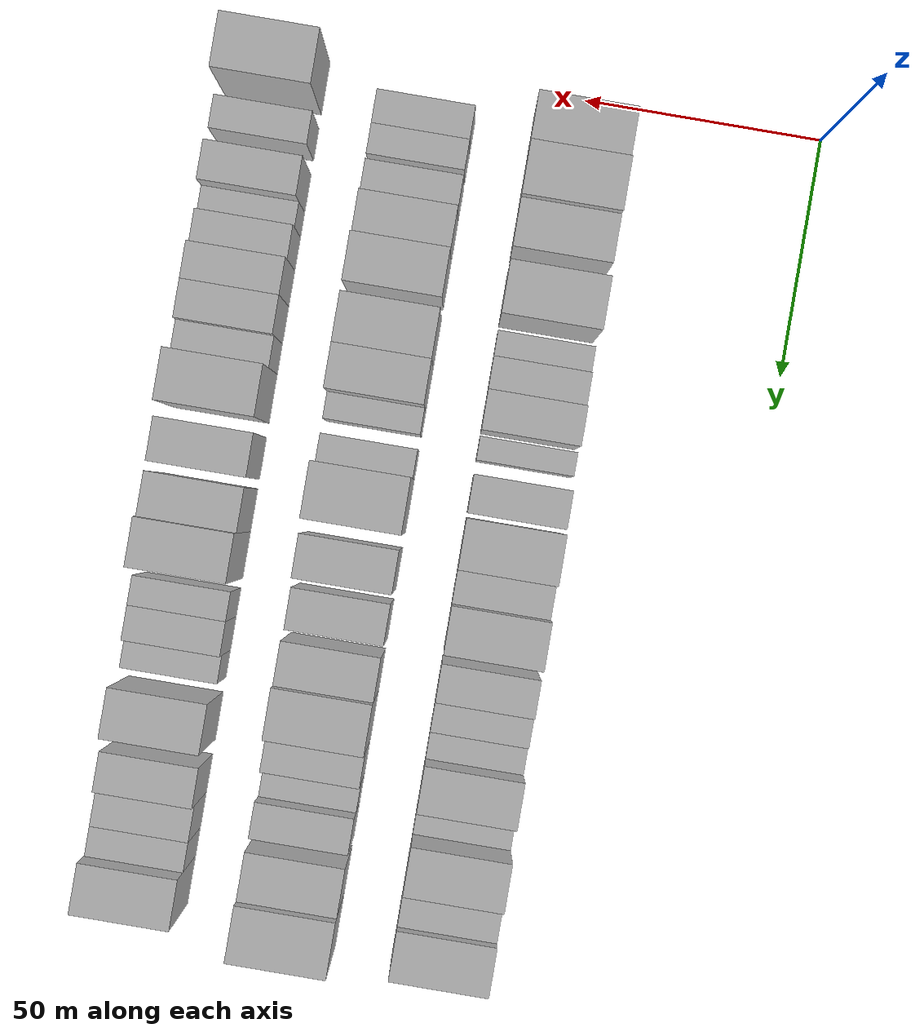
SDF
<sdf version="1.6">
 <world name="default">
  <model name="building_38">
   <static>1</static>
   <pose>50.0000 10.1808 0 0.000000 0.000000 0.000000</pose>
   <link name="link">
    <pose>0 0 10.50 0 0 0</pose>
    <collision name="collision"><geometry><box><size>20.0000 10.4495 21.0000</size></box></geometry></collision>
    <visual name="visual">
     <cast_shadows>0</cast_shadows>
     <geometry><box><size>20.0000 10.4495 21.0000</size></box></geometry>
     <material>
      <script>
       <uri>model://HANNAS_wall/materials/scripts</uri>
       <uri>model://HANNAS_wall/materials/textures</uri>
       <name>vrc/HANNAS_wall</name>
      </script>
     </material>
    </visual>
   </link>
  </model>
  <model name="building_39">
   <static>1</static>
   <pose>50.0000 20.8284 0 0.000000 0.000000 0.000000</pose>
   <link name="link">
    <pose>0 0 12.00 0 0 0</pose>
    <collision name="collision"><geometry><box><size>20.0000 10.8458 24.0000</size></box></geometry></collision>
    <visual name="visual">
     <cast_shadows>0</cast_shadows>
     <geometry><box><size>20.0000 10.8458 24.0000</size></box></geometry>
     <material>
      <script>
       <uri>model://HANNAS_wall/materials/scripts</uri>
       <uri>model://HANNAS_wall/materials/textures</uri>
       <name>vrc/HANNAS_wall</name>
      </script>
     </material>
    </visual>
   </link>
  </model>
  <model name="building_40">
   <static>1</static>
   <pose>50.0000 31.1546 0 0.000000 0.000000 0.000000</pose>
   <link name="link">
    <pose>0 0 10.50 0 0 0</pose>
    <collision name="collision"><geometry><box><size>20.0000 9.8067 21.0000</size></box></geometry></collision>
    <visual name="visual">
     <cast_shadows>0</cast_shadows>
     <geometry><box><size>20.0000 9.8067 21.0000</size></box></geometry>
     <material>
      <script>
       <uri>model://HANNAS_wall/materials/scripts</uri>
       <uri>model://HANNAS_wall/materials/textures</uri>
       <name>vrc/HANNAS_wall</name>
      </script>
     </material>
    </visual>
   </link>
  </model>
  <model name="building_41">
   <static>1</static>
   <pose>50.0000 44.3831 0 0.000000 0.000000 0.000000</pose>
   <link name="link">
    <pose>0 0 12.00 0 0 0</pose>
    <collision name="collision"><geometry><box><size>20.0000 10.6502 24.0000</size></box></geometry></collision>
    <visual name="visual">
     <cast_shadows>0</cast_shadows>
     <geometry><box><size>20.0000 10.6502 24.0000</size></box></geometry>
     <material>
      <script>
       <uri>model://HANNAS_wall/materials/scripts</uri>
       <uri>model://HANNAS_wall/materials/textures</uri>
       <name>vrc/HANNAS_wall</name>
      </script>
     </material>
    </visual>
   </link>
  </model>
  <model name="building_42">
   <static>1</static>
   <pose>50.0000 54.4648 0 0.000000 0.000000 0.000000</pose>
   <link name="link">
    <pose>0 0 6.00 0 0 0</pose>
    <collision name="collision"><geometry><box><size>20.0000 5.5132 12.0000</size></box></geometry></collision>
    <visual name="visual">
     <cast_shadows>0</cast_shadows>
     <geometry><box><size>20.0000 5.5132 12.0000</size></box></geometry>
     <material>
      <script>
       <uri>model://HANNAS_wall/materials/scripts</uri>
       <uri>model://HANNAS_wall/materials/textures</uri>
       <name>vrc/HANNAS_wall</name>
      </script>
     </material>
    </visual>
   </link>
  </model>
  <model name="building_43">
   <static>1</static>
   <pose>50.0000 60.6895 0 0.000000 0.000000 0.000000</pose>
   <link name="link">
    <pose>0 0 7.50 0 0 0</pose>
    <collision name="collision"><geometry><box><size>20.0000 6.9362 15.0000</size></box></geometry></collision>
    <visual name="visual">
     <cast_shadows>0</cast_shadows>
     <geometry><box><size>20.0000 6.9362 15.0000</size></box></geometry>
     <material>
      <script>
       <uri>model://HANNAS_wall/materials/scripts</uri>
       <uri>model://HANNAS_wall/materials/textures</uri>
       <name>vrc/HANNAS_wall</name>
      </script>
     </material>
    </visual>
   </link>
  </model>
  <model name="building_44">
   <static>1</static>
   <pose>50.0000 68.2651 0 0.000000 0.000000 0.000000</pose>
   <link name="link">
    <pose>0 0 9.00 0 0 0</pose>
    <collision name="collision"><geometry><box><size>20.0000 8.2149 18.0000</size></box></geometry></collision>
    <visual name="visual">
     <cast_shadows>0</cast_shadows>
     <geometry><box><size>20.0000 8.2149 18.0000</size></box></geometry>
     <material>
      <script>
       <uri>model://HANNAS_wall/materials/scripts</uri>
       <uri>model://HANNAS_wall/materials/textures</uri>
       <name>vrc/HANNAS_wall</name>
      </script>
     </material>
    </visual>
   </link>
  </model>
  <model name="building_45">
   <static>1</static>
   <pose>50.0000 75.8237 0 0.000000 0.000000 0.000000</pose>
   <link name="link">
    <pose>0 0 6.00 0 0 0</pose>
    <collision name="collision"><geometry><box><size>20.0000 4.9023 12.0000</size></box></geometry></collision>
    <visual name="visual">
     <cast_shadows>0</cast_shadows>
     <geometry><box><size>20.0000 4.9023 12.0000</size></box></geometry>
     <material>
      <script>
       <uri>model://HANNAS_wall/materials/scripts</uri>
       <uri>model://HANNAS_wall/materials/textures</uri>
       <name>vrc/HANNAS_wall</name>
      </script>
     </material>
    </visual>
   </link>
  </model>
  <model name="building_46">
   <static>1</static>
   <pose>50.0000 85.1791 0 0.000000 0.000000 0.000000</pose>
   <link name="link">
    <pose>0 0 9.00 0 0 0</pose>
    <collision name="collision"><geometry><box><size>20.0000 7.8086 18.0000</size></box></geometry></collision>
    <visual name="visual">
     <cast_shadows>0</cast_shadows>
     <geometry><box><size>20.0000 7.8086 18.0000</size></box></geometry>
     <material>
      <script>
       <uri>model://HANNAS_wall/materials/scripts</uri>
       <uri>model://HANNAS_wall/materials/textures</uri>
       <name>vrc/HANNAS_wall</name>
      </script>
     </material>
    </visual>
   </link>
  </model>
  <model name="building_47">
   <static>1</static>
   <pose>50.0000 95.2518 0 0.000000 0.000000 0.000000</pose>
   <link name="link">
    <pose>0 0 10.50 0 0 0</pose>
    <collision name="collision"><geometry><box><size>20.0000 10.3369 21.0000</size></box></geometry></collision>
    <visual name="visual">
     <cast_shadows>0</cast_shadows>
     <geometry><box><size>20.0000 10.3369 21.0000</size></box></geometry>
     <material>
      <script>
       <uri>model://HANNAS_wall/materials/scripts</uri>
       <uri>model://HANNAS_wall/materials/textures</uri>
       <name>vrc/HANNAS_wall</name>
      </script>
     </material>
    </visual>
   </link>
  </model>
  <model name="building_48">
   <static>1</static>
   <pose>50.0000 103.9661 0 0.000000 0.000000 0.000000</pose>
   <link name="link">
    <pose>0 0 7.50 0 0 0</pose>
    <collision name="collision"><geometry><box><size>20.0000 7.0916 15.0000</size></box></geometry></collision>
    <visual name="visual">
     <cast_shadows>0</cast_shadows>
     <geometry><box><size>20.0000 7.0916 15.0000</size></box></geometry>
     <material>
      <script>
       <uri>model://HANNAS_wall/materials/scripts</uri>
       <uri>model://HANNAS_wall/materials/textures</uri>
       <name>vrc/HANNAS_wall</name>
      </script>
     </material>
    </visual>
   </link>
  </model>
  <model name="building_49">
   <static>1</static>
   <pose>50.0000 112.4369 0 0.000000 0.000000 0.000000</pose>
   <link name="link">
    <pose>0 0 10.50 0 0 0</pose>
    <collision name="collision"><geometry><box><size>20.0000 9.8500 21.0000</size></box></geometry></collision>
    <visual name="visual">
     <cast_shadows>0</cast_shadows>
     <geometry><box><size>20.0000 9.8500 21.0000</size></box></geometry>
     <material>
      <script>
       <uri>model://HANNAS_wall/materials/scripts</uri>
       <uri>model://HANNAS_wall/materials/textures</uri>
       <name>vrc/HANNAS_wall</name>
      </script>
     </material>
    </visual>
   </link>
  </model>
  <model name="building_50">
   <static>1</static>
   <pose>50.0000 123.2731 0 0.000000 0.000000 0.000000</pose>
   <link name="link">
    <pose>0 0 9.00 0 0 0</pose>
    <collision name="collision"><geometry><box><size>20.0000 7.8224 18.0000</size></box></geometry></collision>
    <visual name="visual">
     <cast_shadows>0</cast_shadows>
     <geometry><box><size>20.0000 7.8224 18.0000</size></box></geometry>
     <material>
      <script>
       <uri>model://HANNAS_wall/materials/scripts</uri>
       <uri>model://HANNAS_wall/materials/textures</uri>
       <name>vrc/HANNAS_wall</name>
      </script>
     </material>
    </visual>
   </link>
  </model>
  <model name="building_51">
   <static>1</static>
   <pose>50.0000 130.3478 0 0.000000 0.000000 0.000000</pose>
   <link name="link">
    <pose>0 0 7.50 0 0 0</pose>
    <collision name="collision"><geometry><box><size>20.0000 6.3270 15.0000</size></box></geometry></collision>
    <visual name="visual">
     <cast_shadows>0</cast_shadows>
     <geometry><box><size>20.0000 6.3270 15.0000</size></box></geometry>
     <material>
      <script>
       <uri>model://HANNAS_wall/materials/scripts</uri>
       <uri>model://HANNAS_wall/materials/textures</uri>
       <name>vrc/HANNAS_wall</name>
      </script>
     </material>
    </visual>
   </link>
  </model>
  <model name="building_52">
   <static>1</static>
   <pose>50.0000 136.4501 0 0.000000 0.000000 0.000000</pose>
   <link name="link">
    <pose>0 0 6.00 0 0 0</pose>
    <collision name="collision"><geometry><box><size>20.0000 5.8776 12.0000</size></box></geometry></collision>
    <visual name="visual">
     <cast_shadows>0</cast_shadows>
     <geometry><box><size>20.0000 5.8776 12.0000</size></box></geometry>
     <material>
      <script>
       <uri>model://HANNAS_wall/materials/scripts</uri>
       <uri>model://HANNAS_wall/materials/textures</uri>
       <name>vrc/HANNAS_wall</name>
      </script>
     </material>
    </visual>
   </link>
  </model>
  <model name="building_53">
   <static>1</static>
   <pose>50.0000 144.1635 0 0.000000 0.000000 0.000000</pose>
   <link name="link">
    <pose>0 0 10.50 0 0 0</pose>
    <collision name="collision"><geometry><box><size>20.0000 9.5491 21.0000</size></box></geometry></collision>
    <visual name="visual">
     <cast_shadows>0</cast_shadows>
     <geometry><box><size>20.0000 9.5491 21.0000</size></box></geometry>
     <material>
      <script>
       <uri>model://HANNAS_wall/materials/scripts</uri>
       <uri>model://HANNAS_wall/materials/textures</uri>
       <name>vrc/HANNAS_wall</name>
      </script>
     </material>
    </visual>
   </link>
  </model>
  <model name="building_54">
   <static>1</static>
   <pose>50.0000 151.8687 0 0.000000 0.000000 0.000000</pose>
   <link name="link">
    <pose>0 0 6.00 0 0 0</pose>
    <collision name="collision"><geometry><box><size>20.0000 5.8613 12.0000</size></box></geometry></collision>
    <visual name="visual">
     <cast_shadows>0</cast_shadows>
     <geometry><box><size>20.0000 5.8613 12.0000</size></box></geometry>
     <material>
      <script>
       <uri>model://HANNAS_wall/materials/scripts</uri>
       <uri>model://HANNAS_wall/materials/textures</uri>
       <name>vrc/HANNAS_wall</name>
      </script>
     </material>
    </visual>
   </link>
  </model>
  <model name="building_55">
   <static>1</static>
   <pose>50.0000 159.7212 0 0.000000 0.000000 0.000000</pose>
   <link name="link">
    <pose>0 0 12.00 0 0 0</pose>
    <collision name="collision"><geometry><box><size>20.0000 9.8438 24.0000</size></box></geometry></collision>
    <visual name="visual">
     <cast_shadows>0</cast_shadows>
     <geometry><box><size>20.0000 9.8438 24.0000</size></box></geometry>
     <material>
      <script>
       <uri>model://HANNAS_wall/materials/scripts</uri>
       <uri>model://HANNAS_wall/materials/textures</uri>
       <name>vrc/HANNAS_wall</name>
      </script>
     </material>
    </visual>
   </link>
  </model>
  <model name="building_56">
   <static>1</static>
   <pose>50.0000 168.3796 0 0.000000 0.000000 0.000000</pose>
   <link name="link">
    <pose>0 0 9.00 0 0 0</pose>
    <collision name="collision"><geometry><box><size>20.0000 7.4730 18.0000</size></box></geometry></collision>
    <visual name="visual">
     <cast_shadows>0</cast_shadows>
     <geometry><box><size>20.0000 7.4730 18.0000</size></box></geometry>
     <material>
      <script>
       <uri>model://HANNAS_wall/materials/scripts</uri>
       <uri>model://HANNAS_wall/materials/textures</uri>
       <name>vrc/HANNAS_wall</name>
      </script>
     </material>
    </visual>
   </link>
  </model>
  <model name="building_57">
   <static>1</static>
   <pose>50.0000 177.1576 0 0.000000 0.000000 0.000000</pose>
   <link name="link">
    <pose>0 0 10.50 0 0 0</pose>
    <collision name="collision"><geometry><box><size>20.0000 10.0828 21.0000</size></box></geometry></collision>
    <visual name="visual">
     <cast_shadows>0</cast_shadows>
     <geometry><box><size>20.0000 10.0828 21.0000</size></box></geometry>
     <material>
      <script>
       <uri>model://HANNAS_wall/materials/scripts</uri>
       <uri>model://HANNAS_wall/materials/textures</uri>
       <name>vrc/HANNAS_wall</name>
      </script>
     </material>
    </visual>
   </link>
  </model>
  <model name="building_118">
   <static>1</static>
   <pose>82.0000 12.0249 0 0.000000 0.000000 0.000000</pose>
   <link name="link">
    <pose>0 0 7.50 0 0 0</pose>
    <collision name="collision"><geometry><box><size>20.0000 6.8524 15.0000</size></box></geometry></collision>
    <visual name="visual">
     <cast_shadows>0</cast_shadows>
     <geometry><box><size>20.0000 6.8524 15.0000</size></box></geometry>
     <material>
      <script>
       <uri>model://HANNAS_wall/materials/scripts</uri>
       <uri>model://HANNAS_wall/materials/textures</uri>
       <name>vrc/HANNAS_wall</name>
      </script>
     </material>
    </visual>
   </link>
  </model>
  <model name="building_119">
   <static>1</static>
   <pose>82.0000 18.5748 0 0.000000 0.000000 0.000000</pose>
   <link name="link">
    <pose>0 0 7.50 0 0 0</pose>
    <collision name="collision"><geometry><box><size>20.0000 6.2474 15.0000</size></box></geometry></collision>
    <visual name="visual">
     <cast_shadows>0</cast_shadows>
     <geometry><box><size>20.0000 6.2474 15.0000</size></box></geometry>
     <material>
      <script>
       <uri>model://HANNAS_wall/materials/scripts</uri>
       <uri>model://HANNAS_wall/materials/textures</uri>
       <name>vrc/HANNAS_wall</name>
      </script>
     </material>
    </visual>
   </link>
  </model>
  <model name="building_120">
   <static>1</static>
   <pose>82.0000 26.0462 0 0.000000 0.000000 0.000000</pose>
   <link name="link">
    <pose>0 0 7.50 0 0 0</pose>
    <collision name="collision"><geometry><box><size>20.0000 6.6953 15.0000</size></box></geometry></collision>
    <visual name="visual">
     <cast_shadows>0</cast_shadows>
     <geometry><box><size>20.0000 6.6953 15.0000</size></box></geometry>
     <material>
      <script>
       <uri>model://HANNAS_wall/materials/scripts</uri>
       <uri>model://HANNAS_wall/materials/textures</uri>
       <name>vrc/HANNAS_wall</name>
      </script>
     </material>
    </visual>
   </link>
  </model>
  <model name="building_121">
   <static>1</static>
   <pose>82.0000 33.8639 0 0.000000 0.000000 0.000000</pose>
   <link name="link">
    <pose>0 0 9.00 0 0 0</pose>
    <collision name="collision"><geometry><box><size>20.0000 8.9402 18.0000</size></box></geometry></collision>
    <visual name="visual">
     <cast_shadows>0</cast_shadows>
     <geometry><box><size>20.0000 8.9402 18.0000</size></box></geometry>
     <material>
      <script>
       <uri>model://HANNAS_wall/materials/scripts</uri>
       <uri>model://HANNAS_wall/materials/textures</uri>
       <name>vrc/HANNAS_wall</name>
      </script>
     </material>
    </visual>
   </link>
  </model>
  <model name="building_122">
   <static>1</static>
   <pose>82.0000 43.2977 0 0.000000 0.000000 0.000000</pose>
   <link name="link">
    <pose>0 0 10.50 0 0 0</pose>
    <collision name="collision"><geometry><box><size>20.0000 9.9273 21.0000</size></box></geometry></collision>
    <visual name="visual">
     <cast_shadows>0</cast_shadows>
     <geometry><box><size>20.0000 9.9273 21.0000</size></box></geometry>
     <material>
      <script>
       <uri>model://HANNAS_wall/materials/scripts</uri>
       <uri>model://HANNAS_wall/materials/textures</uri>
       <name>vrc/HANNAS_wall</name>
      </script>
     </material>
    </visual>
   </link>
  </model>
  <model name="building_123">
   <static>1</static>
   <pose>82.0000 55.3535 0 0.000000 0.000000 0.000000</pose>
   <link name="link">
    <pose>0 0 10.50 0 0 0</pose>
    <collision name="collision"><geometry><box><size>20.0000 10.1844 21.0000</size></box></geometry></collision>
    <visual name="visual">
     <cast_shadows>0</cast_shadows>
     <geometry><box><size>20.0000 10.1844 21.0000</size></box></geometry>
     <material>
      <script>
       <uri>model://HANNAS_wall/materials/scripts</uri>
       <uri>model://HANNAS_wall/materials/textures</uri>
       <name>vrc/HANNAS_wall</name>
      </script>
     </material>
    </visual>
   </link>
  </model>
  <model name="building_124">
   <static>1</static>
   <pose>82.0000 65.0485 0 0.000000 0.000000 0.000000</pose>
   <link name="link">
    <pose>0 0 10.50 0 0 0</pose>
    <collision name="collision"><geometry><box><size>20.0000 9.2056 21.0000</size></box></geometry></collision>
    <visual name="visual">
     <cast_shadows>0</cast_shadows>
     <geometry><box><size>20.0000 9.2056 21.0000</size></box></geometry>
     <material>
      <script>
       <uri>model://HANNAS_wall/materials/scripts</uri>
       <uri>model://HANNAS_wall/materials/textures</uri>
       <name>vrc/HANNAS_wall</name>
      </script>
     </material>
    </visual>
   </link>
  </model>
  <model name="building_125">
   <static>1</static>
   <pose>82.0000 72.4088 0 0.000000 0.000000 0.000000</pose>
   <link name="link">
    <pose>0 0 6.00 0 0 0</pose>
    <collision name="collision"><geometry><box><size>20.0000 5.5149 12.0000</size></box></geometry></collision>
    <visual name="visual">
     <cast_shadows>0</cast_shadows>
     <geometry><box><size>20.0000 5.5149 12.0000</size></box></geometry>
     <material>
      <script>
       <uri>model://HANNAS_wall/materials/scripts</uri>
       <uri>model://HANNAS_wall/materials/textures</uri>
       <name>vrc/HANNAS_wall</name>
      </script>
     </material>
    </visual>
   </link>
  </model>
  <model name="building_126">
   <static>1</static>
   <pose>82.0000 81.1363 0 0.000000 0.000000 0.000000</pose>
   <link name="link">
    <pose>0 0 6.00 0 0 0</pose>
    <collision name="collision"><geometry><box><size>20.0000 5.9402 12.0000</size></box></geometry></collision>
    <visual name="visual">
     <cast_shadows>0</cast_shadows>
     <geometry><box><size>20.0000 5.9402 12.0000</size></box></geometry>
     <material>
      <script>
       <uri>model://HANNAS_wall/materials/scripts</uri>
       <uri>model://HANNAS_wall/materials/textures</uri>
       <name>vrc/HANNAS_wall</name>
      </script>
     </material>
    </visual>
   </link>
  </model>
  <model name="building_127">
   <static>1</static>
   <pose>82.0000 89.8223 0 0.000000 0.000000 0.000000</pose>
   <link name="link">
    <pose>0 0 12.00 0 0 0</pose>
    <collision name="collision"><geometry><box><size>20.0000 11.4318 24.0000</size></box></geometry></collision>
    <visual name="visual">
     <cast_shadows>0</cast_shadows>
     <geometry><box><size>20.0000 11.4318 24.0000</size></box></geometry>
     <material>
      <script>
       <uri>model://HANNAS_wall/materials/scripts</uri>
       <uri>model://HANNAS_wall/materials/textures</uri>
       <name>vrc/HANNAS_wall</name>
      </script>
     </material>
    </visual>
   </link>
  </model>
  <model name="building_128">
   <static>1</static>
   <pose>82.0000 102.9925 0 0.000000 0.000000 0.000000</pose>
   <link name="link">
    <pose>0 0 10.50 0 0 0</pose>
    <collision name="collision"><geometry><box><size>20.0000 8.9086 21.0000</size></box></geometry></collision>
    <visual name="visual">
     <cast_shadows>0</cast_shadows>
     <geometry><box><size>20.0000 8.9086 21.0000</size></box></geometry>
     <material>
      <script>
       <uri>model://HANNAS_wall/materials/scripts</uri>
       <uri>model://HANNAS_wall/materials/textures</uri>
       <name>vrc/HANNAS_wall</name>
      </script>
     </material>
    </visual>
   </link>
  </model>
  <model name="building_129">
   <static>1</static>
   <pose>82.0000 113.6891 0 0.000000 0.000000 0.000000</pose>
   <link name="link">
    <pose>0 0 9.00 0 0 0</pose>
    <collision name="collision"><geometry><box><size>20.0000 8.4846 18.0000</size></box></geometry></collision>
    <visual name="visual">
     <cast_shadows>0</cast_shadows>
     <geometry><box><size>20.0000 8.4846 18.0000</size></box></geometry>
     <material>
      <script>
       <uri>model://HANNAS_wall/materials/scripts</uri>
       <uri>model://HANNAS_wall/materials/textures</uri>
       <name>vrc/HANNAS_wall</name>
      </script>
     </material>
    </visual>
   </link>
  </model>
  <model name="building_130">
   <static>1</static>
   <pose>82.0000 124.4045 0 0.000000 0.000000 0.000000</pose>
   <link name="link">
    <pose>0 0 10.50 0 0 0</pose>
    <collision name="collision"><geometry><box><size>20.0000 8.9461 21.0000</size></box></geometry></collision>
    <visual name="visual">
     <cast_shadows>0</cast_shadows>
     <geometry><box><size>20.0000 8.9461 21.0000</size></box></geometry>
     <material>
      <script>
       <uri>model://HANNAS_wall/materials/scripts</uri>
       <uri>model://HANNAS_wall/materials/textures</uri>
       <name>vrc/HANNAS_wall</name>
      </script>
     </material>
    </visual>
   </link>
  </model>
  <model name="building_131">
   <static>1</static>
   <pose>82.0000 134.0623 0 0.000000 0.000000 0.000000</pose>
   <link name="link">
    <pose>0 0 12.00 0 0 0</pose>
    <collision name="collision"><geometry><box><size>20.0000 10.3694 24.0000</size></box></geometry></collision>
    <visual name="visual">
     <cast_shadows>0</cast_shadows>
     <geometry><box><size>20.0000 10.3694 24.0000</size></box></geometry>
     <material>
      <script>
       <uri>model://HANNAS_wall/materials/scripts</uri>
       <uri>model://HANNAS_wall/materials/textures</uri>
       <name>vrc/HANNAS_wall</name>
      </script>
     </material>
    </visual>
   </link>
  </model>
  <model name="building_132">
   <static>1</static>
   <pose>82.0000 142.8918 0 0.000000 0.000000 0.000000</pose>
   <link name="link">
    <pose>0 0 9.00 0 0 0</pose>
    <collision name="collision"><geometry><box><size>20.0000 7.2896 18.0000</size></box></geometry></collision>
    <visual name="visual">
     <cast_shadows>0</cast_shadows>
     <geometry><box><size>20.0000 7.2896 18.0000</size></box></geometry>
     <material>
      <script>
       <uri>model://HANNAS_wall/materials/scripts</uri>
       <uri>model://HANNAS_wall/materials/textures</uri>
       <name>vrc/HANNAS_wall</name>
      </script>
     </material>
    </visual>
   </link>
  </model>
  <model name="building_133">
   <static>1</static>
   <pose>82.0000 149.5289 0 0.000000 0.000000 0.000000</pose>
   <link name="link">
    <pose>0 0 6.00 0 0 0</pose>
    <collision name="collision"><geometry><box><size>20.0000 5.9846 12.0000</size></box></geometry></collision>
    <visual name="visual">
     <cast_shadows>0</cast_shadows>
     <geometry><box><size>20.0000 5.9846 12.0000</size></box></geometry>
     <material>
      <script>
       <uri>model://HANNAS_wall/materials/scripts</uri>
       <uri>model://HANNAS_wall/materials/textures</uri>
       <name>vrc/HANNAS_wall</name>
      </script>
     </material>
    </visual>
   </link>
  </model>
  <model name="building_134">
   <static>1</static>
   <pose>82.0000 156.2030 0 0.000000 0.000000 0.000000</pose>
   <link name="link">
    <pose>0 0 9.00 0 0 0</pose>
    <collision name="collision"><geometry><box><size>20.0000 7.3637 18.0000</size></box></geometry></collision>
    <visual name="visual">
     <cast_shadows>0</cast_shadows>
     <geometry><box><size>20.0000 7.3637 18.0000</size></box></geometry>
     <material>
      <script>
       <uri>model://HANNAS_wall/materials/scripts</uri>
       <uri>model://HANNAS_wall/materials/textures</uri>
       <name>vrc/HANNAS_wall</name>
      </script>
     </material>
    </visual>
   </link>
  </model>
  <model name="building_135">
   <static>1</static>
   <pose>82.0000 166.8101 0 0.000000 0.000000 0.000000</pose>
   <link name="link">
    <pose>0 0 10.50 0 0 0</pose>
    <collision name="collision"><geometry><box><size>20.0000 9.8505 21.0000</size></box></geometry></collision>
    <visual name="visual">
     <cast_shadows>0</cast_shadows>
     <geometry><box><size>20.0000 9.8505 21.0000</size></box></geometry>
     <material>
      <script>
       <uri>model://HANNAS_wall/materials/scripts</uri>
       <uri>model://HANNAS_wall/materials/textures</uri>
       <name>vrc/HANNAS_wall</name>
      </script>
     </material>
    </visual>
   </link>
  </model>
  <model name="building_136">
   <static>1</static>
   <pose>82.0000 177.4127 0 0.000000 0.000000 0.000000</pose>
   <link name="link">
    <pose>0 0 12.00 0 0 0</pose>
    <collision name="collision"><geometry><box><size>20.0000 11.3546 24.0000</size></box></geometry></collision>
    <visual name="visual">
     <cast_shadows>0</cast_shadows>
     <geometry><box><size>20.0000 11.3546 24.0000</size></box></geometry>
     <material>
      <script>
       <uri>model://HANNAS_wall/materials/scripts</uri>
       <uri>model://HANNAS_wall/materials/textures</uri>
       <name>vrc/HANNAS_wall</name>
      </script>
     </material>
    </visual>
   </link>
  </model>
  <model name="building_196">
   <static>1</static>
   <pose>114.0000 6.6037 0 0.000000 0.000000 0.000000</pose>
   <link name="link">
    <pose>0 0 12.00 0 0 0</pose>
    <collision name="collision"><geometry><box><size>20.0000 11.0356 24.0000</size></box></geometry></collision>
    <visual name="visual">
     <cast_shadows>0</cast_shadows>
     <geometry><box><size>20.0000 11.0356 24.0000</size></box></geometry>
     <material>
      <script>
       <uri>model://HANNAS_wall/materials/scripts</uri>
       <uri>model://HANNAS_wall/materials/textures</uri>
       <name>vrc/HANNAS_wall</name>
      </script>
     </material>
    </visual>
   </link>
  </model>
  <model name="building_197">
   <static>1</static>
   <pose>114.0000 18.5129 0 0.000000 0.000000 0.000000</pose>
   <link name="link">
    <pose>0 0 7.50 0 0 0</pose>
    <collision name="collision"><geometry><box><size>20.0000 6.7827 15.0000</size></box></geometry></collision>
    <visual name="visual">
     <cast_shadows>0</cast_shadows>
     <geometry><box><size>20.0000 6.7827 15.0000</size></box></geometry>
     <material>
      <script>
       <uri>model://HANNAS_wall/materials/scripts</uri>
       <uri>model://HANNAS_wall/materials/textures</uri>
       <name>vrc/HANNAS_wall</name>
      </script>
     </material>
    </visual>
   </link>
  </model>
  <model name="building_198">
   <static>1</static>
   <pose>114.0000 28.9154 0 0.000000 0.000000 0.000000</pose>
   <link name="link">
    <pose>0 0 9.00 0 0 0</pose>
    <collision name="collision"><geometry><box><size>20.0000 8.0223 18.0000</size></box></geometry></collision>
    <visual name="visual">
     <cast_shadows>0</cast_shadows>
     <geometry><box><size>20.0000 8.0223 18.0000</size></box></geometry>
     <material>
      <script>
       <uri>model://HANNAS_wall/materials/scripts</uri>
       <uri>model://HANNAS_wall/materials/textures</uri>
       <name>vrc/HANNAS_wall</name>
      </script>
     </material>
    </visual>
   </link>
  </model>
  <model name="building_199">
   <static>1</static>
   <pose>114.0000 35.5595 0 0.000000 0.000000 0.000000</pose>
   <link name="link">
    <pose>0 0 6.00 0 0 0</pose>
    <collision name="collision"><geometry><box><size>20.0000 5.2659 12.0000</size></box></geometry></collision>
    <visual name="visual">
     <cast_shadows>0</cast_shadows>
     <geometry><box><size>20.0000 5.2659 12.0000</size></box></geometry>
     <material>
      <script>
       <uri>model://HANNAS_wall/materials/scripts</uri>
       <uri>model://HANNAS_wall/materials/textures</uri>
       <name>vrc/HANNAS_wall</name>
      </script>
     </material>
    </visual>
   </link>
  </model>
  <model name="building_200">
   <static>1</static>
   <pose>114.0000 41.7086 0 0.000000 0.000000 0.000000</pose>
   <link name="link">
    <pose>0 0 7.50 0 0 0</pose>
    <collision name="collision"><geometry><box><size>20.0000 7.0324 15.0000</size></box></geometry></collision>
    <visual name="visual">
     <cast_shadows>0</cast_shadows>
     <geometry><box><size>20.0000 7.0324 15.0000</size></box></geometry>
     <material>
      <script>
       <uri>model://HANNAS_wall/materials/scripts</uri>
       <uri>model://HANNAS_wall/materials/textures</uri>
       <name>vrc/HANNAS_wall</name>
      </script>
     </material>
    </visual>
   </link>
  </model>
  <model name="building_201">
   <static>1</static>
   <pose>114.0000 49.0201 0 0.000000 0.000000 0.000000</pose>
   <link name="link">
    <pose>0 0 9.00 0 0 0</pose>
    <collision name="collision"><geometry><box><size>20.0000 7.5906 18.0000</size></box></geometry></collision>
    <visual name="visual">
     <cast_shadows>0</cast_shadows>
     <geometry><box><size>20.0000 7.5906 18.0000</size></box></geometry>
     <material>
      <script>
       <uri>model://HANNAS_wall/materials/scripts</uri>
       <uri>model://HANNAS_wall/materials/textures</uri>
       <name>vrc/HANNAS_wall</name>
      </script>
     </material>
    </visual>
   </link>
  </model>
  <model name="building_202">
   <static>1</static>
   <pose>114.0000 56.7578 0 0.000000 0.000000 0.000000</pose>
   <link name="link">
    <pose>0 0 9.00 0 0 0</pose>
    <collision name="collision"><geometry><box><size>20.0000 7.8848 18.0000</size></box></geometry></collision>
    <visual name="visual">
     <cast_shadows>0</cast_shadows>
     <geometry><box><size>20.0000 7.8848 18.0000</size></box></geometry>
     <material>
      <script>
       <uri>model://HANNAS_wall/materials/scripts</uri>
       <uri>model://HANNAS_wall/materials/textures</uri>
       <name>vrc/HANNAS_wall</name>
      </script>
     </material>
    </visual>
   </link>
  </model>
  <model name="building_203">
   <static>1</static>
   <pose>114.0000 63.9502 0 0.000000 0.000000 0.000000</pose>
   <link name="link">
    <pose>0 0 7.50 0 0 0</pose>
    <collision name="collision"><geometry><box><size>20.0000 6.5001 15.0000</size></box></geometry></collision>
    <visual name="visual">
     <cast_shadows>0</cast_shadows>
     <geometry><box><size>20.0000 6.5001 15.0000</size></box></geometry>
     <material>
      <script>
       <uri>model://HANNAS_wall/materials/scripts</uri>
       <uri>model://HANNAS_wall/materials/textures</uri>
       <name>vrc/HANNAS_wall</name>
      </script>
     </material>
    </visual>
   </link>
  </model>
  <model name="building_204">
   <static>1</static>
   <pose>114.0000 72.4253 0 0.000000 0.000000 0.000000</pose>
   <link name="link">
    <pose>0 0 12.00 0 0 0</pose>
    <collision name="collision"><geometry><box><size>20.0000 10.4501 24.0000</size></box></geometry></collision>
    <visual name="visual">
     <cast_shadows>0</cast_shadows>
     <geometry><box><size>20.0000 10.4501 24.0000</size></box></geometry>
     <material>
      <script>
       <uri>model://HANNAS_wall/materials/scripts</uri>
       <uri>model://HANNAS_wall/materials/textures</uri>
       <name>vrc/HANNAS_wall</name>
      </script>
     </material>
    </visual>
   </link>
  </model>
  <model name="building_205">
   <static>1</static>
   <pose>114.0000 85.0844 0 0.000000 0.000000 0.000000</pose>
   <link name="link">
    <pose>0 0 10.50 0 0 0</pose>
    <collision name="collision"><geometry><box><size>20.0000 8.8681 21.0000</size></box></geometry></collision>
    <visual name="visual">
     <cast_shadows>0</cast_shadows>
     <geometry><box><size>20.0000 8.8681 21.0000</size></box></geometry>
     <material>
      <script>
       <uri>model://HANNAS_wall/materials/scripts</uri>
       <uri>model://HANNAS_wall/materials/textures</uri>
       <name>vrc/HANNAS_wall</name>
      </script>
     </material>
    </visual>
   </link>
  </model>
  <model name="building_206">
   <static>1</static>
   <pose>114.0000 96.0585 0 0.000000 0.000000 0.000000</pose>
   <link name="link">
    <pose>0 0 10.50 0 0 0</pose>
    <collision name="collision"><geometry><box><size>20.0000 9.0800 21.0000</size></box></geometry></collision>
    <visual name="visual">
     <cast_shadows>0</cast_shadows>
     <geometry><box><size>20.0000 9.0800 21.0000</size></box></geometry>
     <material>
      <script>
       <uri>model://HANNAS_wall/materials/scripts</uri>
       <uri>model://HANNAS_wall/materials/textures</uri>
       <name>vrc/HANNAS_wall</name>
      </script>
     </material>
    </visual>
   </link>
  </model>
  <model name="building_207">
   <static>1</static>
   <pose>114.0000 105.5786 0 0.000000 0.000000 0.000000</pose>
   <link name="link">
    <pose>0 0 12.00 0 0 0</pose>
    <collision name="collision"><geometry><box><size>20.0000 9.9602 24.0000</size></box></geometry></collision>
    <visual name="visual">
     <cast_shadows>0</cast_shadows>
     <geometry><box><size>20.0000 9.9602 24.0000</size></box></geometry>
     <material>
      <script>
       <uri>model://HANNAS_wall/materials/scripts</uri>
       <uri>model://HANNAS_wall/materials/textures</uri>
       <name>vrc/HANNAS_wall</name>
      </script>
     </material>
    </visual>
   </link>
  </model>
  <model name="building_208">
   <static>1</static>
   <pose>114.0000 115.5871 0 0.000000 0.000000 0.000000</pose>
   <link name="link">
    <pose>0 0 7.50 0 0 0</pose>
    <collision name="collision"><geometry><box><size>20.0000 6.0569 15.0000</size></box></geometry></collision>
    <visual name="visual">
     <cast_shadows>0</cast_shadows>
     <geometry><box><size>20.0000 6.0569 15.0000</size></box></geometry>
     <material>
      <script>
       <uri>model://HANNAS_wall/materials/scripts</uri>
       <uri>model://HANNAS_wall/materials/textures</uri>
       <name>vrc/HANNAS_wall</name>
      </script>
     </material>
    </visual>
   </link>
  </model>
  <model name="building_209">
   <static>1</static>
   <pose>114.0000 122.1890 0 0.000000 0.000000 0.000000</pose>
   <link name="link">
    <pose>0 0 7.50 0 0 0</pose>
    <collision name="collision"><geometry><box><size>20.0000 7.1469 15.0000</size></box></geometry></collision>
    <visual name="visual">
     <cast_shadows>0</cast_shadows>
     <geometry><box><size>20.0000 7.1469 15.0000</size></box></geometry>
     <material>
      <script>
       <uri>model://HANNAS_wall/materials/scripts</uri>
       <uri>model://HANNAS_wall/materials/textures</uri>
       <name>vrc/HANNAS_wall</name>
      </script>
     </material>
    </visual>
   </link>
  </model>
  <model name="building_210">
   <static>1</static>
   <pose>114.0000 128.6840 0 0.000000 0.000000 0.000000</pose>
   <link name="link">
    <pose>0 0 6.00 0 0 0</pose>
    <collision name="collision"><geometry><box><size>20.0000 5.8430 12.0000</size></box></geometry></collision>
    <visual name="visual">
     <cast_shadows>0</cast_shadows>
     <geometry><box><size>20.0000 5.8430 12.0000</size></box></geometry>
     <material>
      <script>
       <uri>model://HANNAS_wall/materials/scripts</uri>
       <uri>model://HANNAS_wall/materials/textures</uri>
       <name>vrc/HANNAS_wall</name>
      </script>
     </material>
    </visual>
   </link>
  </model>
  <model name="building_211">
   <static>1</static>
   <pose>114.0000 139.7044 0 0.000000 0.000000 0.000000</pose>
   <link name="link">
    <pose>0 0 10.50 0 0 0</pose>
    <collision name="collision"><geometry><box><size>20.0000 10.1978 21.0000</size></box></geometry></collision>
    <visual name="visual">
     <cast_shadows>0</cast_shadows>
     <geometry><box><size>20.0000 10.1978 21.0000</size></box></geometry>
     <material>
      <script>
       <uri>model://HANNAS_wall/materials/scripts</uri>
       <uri>model://HANNAS_wall/materials/textures</uri>
       <name>vrc/HANNAS_wall</name>
      </script>
     </material>
    </visual>
   </link>
  </model>
  <model name="building_212">
   <static>1</static>
   <pose>114.0000 151.8987 0 0.000000 0.000000 0.000000</pose>
   <link name="link">
    <pose>0 0 9.00 0 0 0</pose>
    <collision name="collision"><geometry><box><size>20.0000 8.1908 18.0000</size></box></geometry></collision>
    <visual name="visual">
     <cast_shadows>0</cast_shadows>
     <geometry><box><size>20.0000 8.1908 18.0000</size></box></geometry>
     <material>
      <script>
       <uri>model://HANNAS_wall/materials/scripts</uri>
       <uri>model://HANNAS_wall/materials/textures</uri>
       <name>vrc/HANNAS_wall</name>
      </script>
     </material>
    </visual>
   </link>
  </model>
  <model name="building_213">
   <static>1</static>
   <pose>114.0000 159.7111 0 0.000000 0.000000 0.000000</pose>
   <link name="link">
    <pose>0 0 7.50 0 0 0</pose>
    <collision name="collision"><geometry><box><size>20.0000 7.4342 15.0000</size></box></geometry></collision>
    <visual name="visual">
     <cast_shadows>0</cast_shadows>
     <geometry><box><size>20.0000 7.4342 15.0000</size></box></geometry>
     <material>
      <script>
       <uri>model://HANNAS_wall/materials/scripts</uri>
       <uri>model://HANNAS_wall/materials/textures</uri>
       <name>vrc/HANNAS_wall</name>
      </script>
     </material>
    </visual>
   </link>
  </model>
  <model name="building_214">
   <static>1</static>
   <pose>114.0000 166.4535 0 0.000000 0.000000 0.000000</pose>
   <link name="link">
    <pose>0 0 7.50 0 0 0</pose>
    <collision name="collision"><geometry><box><size>20.0000 6.0505 15.0000</size></box></geometry></collision>
    <visual name="visual">
     <cast_shadows>0</cast_shadows>
     <geometry><box><size>20.0000 6.0505 15.0000</size></box></geometry>
     <material>
      <script>
       <uri>model://HANNAS_wall/materials/scripts</uri>
       <uri>model://HANNAS_wall/materials/textures</uri>
       <name>vrc/HANNAS_wall</name>
      </script>
     </material>
    </visual>
   </link>
  </model>
  <model name="building_215">
   <static>1</static>
   <pose>114.0000 174.6185 0 0.000000 0.000000 0.000000</pose>
   <link name="link">
    <pose>0 0 10.50 0 0 0</pose>
    <collision name="collision"><geometry><box><size>20.0000 10.2795 21.0000</size></box></geometry></collision>
    <visual name="visual">
     <cast_shadows>0</cast_shadows>
     <geometry><box><size>20.0000 10.2795 21.0000</size></box></geometry>
     <material>
      <script>
       <uri>model://HANNAS_wall/materials/scripts</uri>
       <uri>model://HANNAS_wall/materials/textures</uri>
       <name>vrc/HANNAS_wall</name>
      </script>
     </material>
    </visual>
   </link>
  </model>
 </world>
</sdf>
